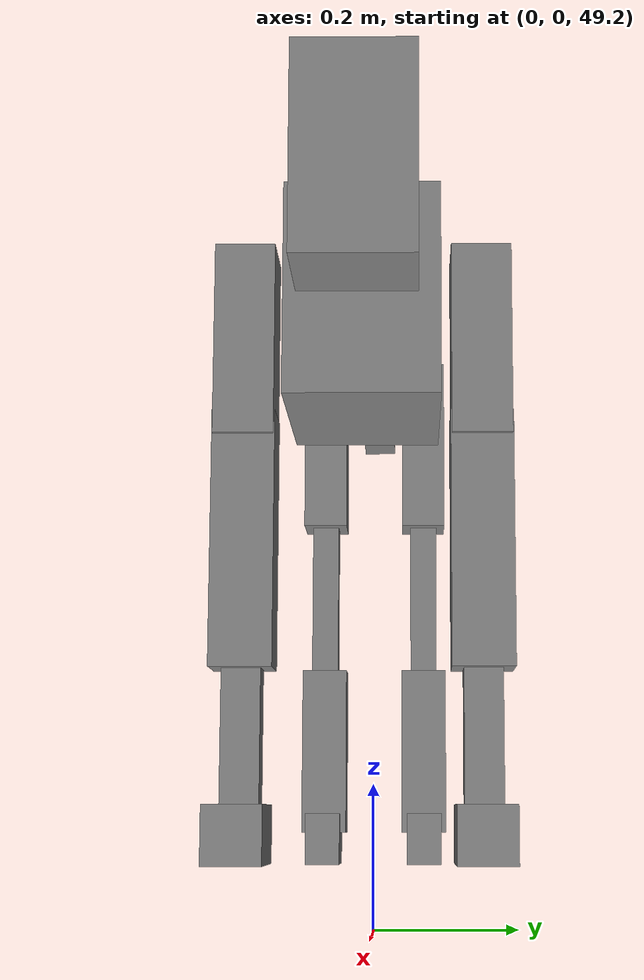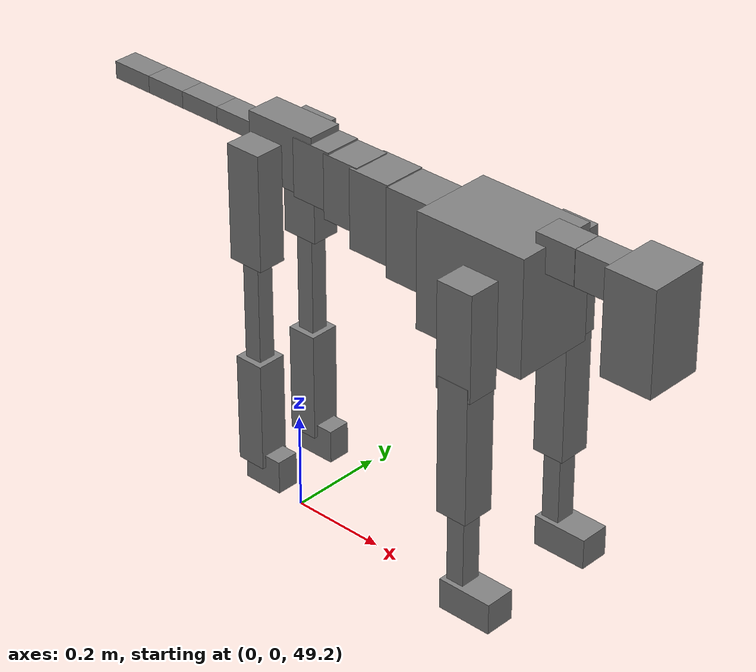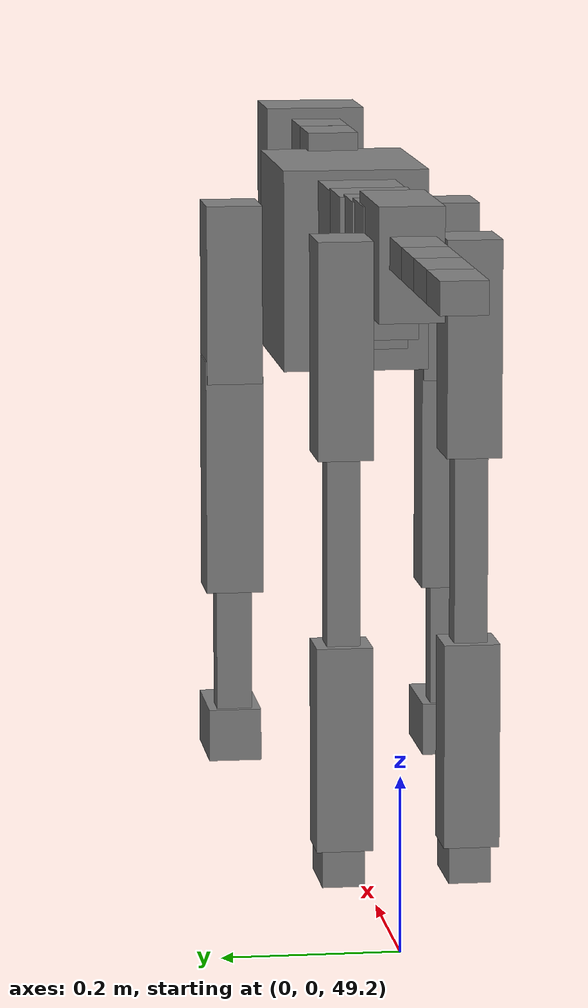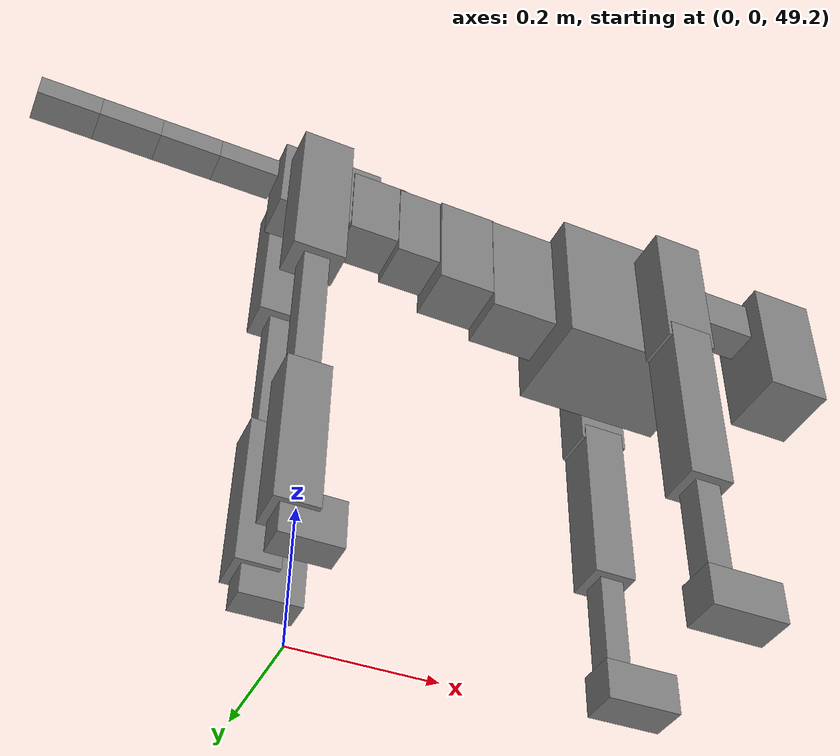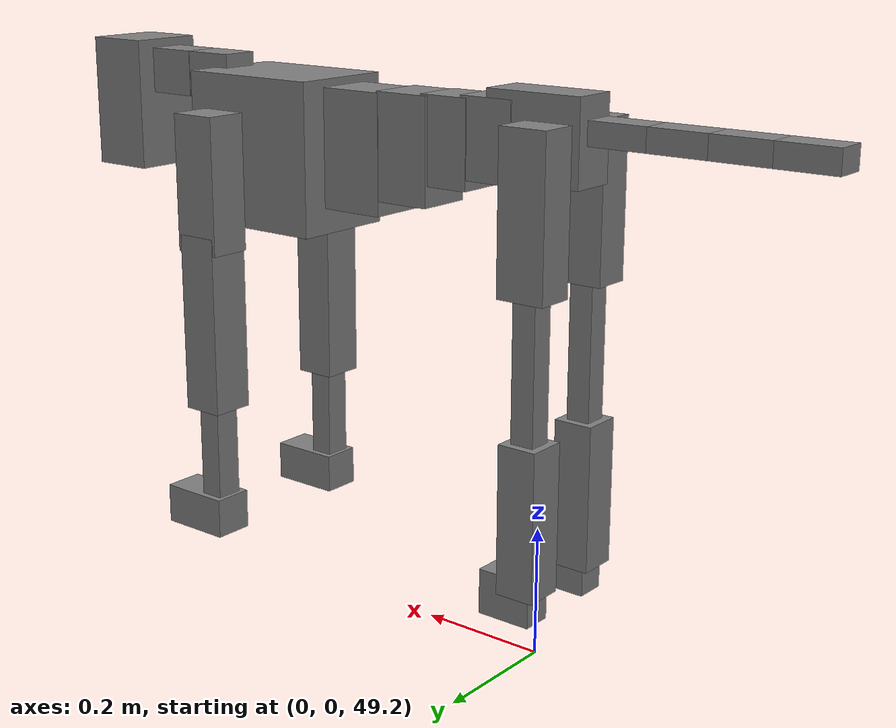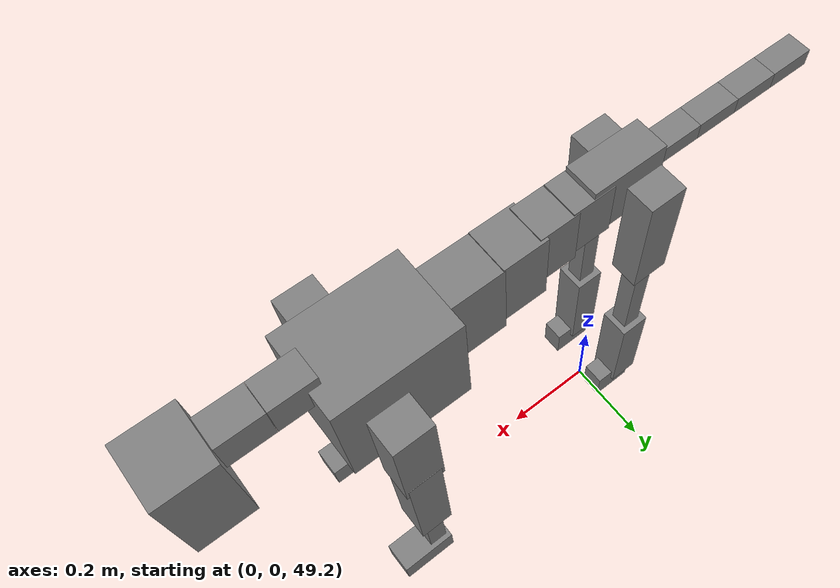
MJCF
<mujoco model="dog">

    <default>
        <joint armature="0.02" stiffness="1" damping="0.2" limited="true"/>
        <geom condim="3" friction="1 0.05 0.05" margin="0.01"/>
        <motor ctrllimited="true" ctrlrange="-1.0 1.0" forcelimited="true" gear="50"/>
    </default>

    <compiler inertiafromgeom="true" angle="radian"/>

    <option timestep="0.016" iterations="50" tolerance="1e-10" solver="Newton" jacobian="dense" cone="pyramidal"/>

    <size nconmax="20000" njmax="60000" nstack="5000000"/>
    <visual>
        <map force="0.1" zfar="30"/>
        <rgba haze="0.15 0.25 0.35 1"/>
        <quality shadowsize="2048"/>
        <global offwidth="800" offheight="800"/>
    </visual>

    <asset>
        <texture type="skybox" builtin="gradient" rgb1="0.3 0.5 0.7" rgb2="0 0 0" width="512" height="512"/>
        <texture name="texplane" type="2d" builtin="checker" rgb1=".2 .3 .4" rgb2=".1 0.15 0.2" width="512" height="512"
                 mark="cross" markrgb=".8 .8 .8"/>
        <texture name="texgeom" type="cube" builtin="flat" mark="cross" width="127" height="1278" rgb1="0.8 0.6 0.4"
                 rgb2="0.8 0.6 0.4" markrgb="1 1 1" random="0.01"/>

        <material name="matplane" reflectance="0.3" texture="texplane" texrepeat="1 1" texuniform="true"/>
        <material name="matgeom" texture="texgeom" texuniform="true" rgba="0.8 0.6 .4 1"/>
    </asset>

    <worldbody>
        <geom name="floor" pos="0 0 0" size="0 0 .25" type="plane" material="matplane" condim="3"/>

        <light directional="false" diffuse=".2 .2 .2" specular="0 0 0" pos="0 0 5" dir="0 0 -1" castshadow="false"/>
        <light mode="targetbodycom" target="torso" directional="false" diffuse=".8 .8 .8" specular="0.3 0.3 0.3"
               pos="0 0 4.0" dir="0 0 -1"/>

        <body name="root" pos="0 0 50">
            <freejoint name="root_1"/>
            <geom type="box" pos="0 0 -0.02" size="0.0774  0.0358  0.063" density="2030"/>

            <body name="spine1" pos="0.054 0 0">
                <joint name="spine1_y" axis="0 1 0" range="0 0.7" limited="true"/>
                <geom type="box" pos="0.02375 0 -0.03" size="0.04375  0.0375  0.05985" density="2030"/>

                <body name="spine2" pos="0.0612 0 0">
                    <joint name="spine2_y" axis="0 1 0" range="-0.15 0.15" limited="true"/>
                    <geom type="box" pos="0.03555  0  -0.04" size="0.04055  0.039  0.06615" density="2030"/>

                    <body name="spine3" pos="0.0730 0 0">
                        <joint name="spine3_y" axis="0 1 0" range="-0.15 0.15" limited="true"/>
                        <geom type="box" pos="0.03555  0  -0.057" size="0.04555  0.0445  0.081" density="2030"/>

                        <body name="spine4" pos="0.0780 0 0">
                            <joint name="spine4_y" axis="0 1 0" range="-0.15 0.15" limited="true"/>
                            <geom type="box" pos="0.05265  0  -0.07" size="0.05265  0.045  0.09135" density="2030"/>

                            <body name="torso" pos="0.1082 0 0">
                                <joint name="torso_y" axis="0 1 0" range="-0.15 0.15" limited="true"/>
                                <geom type="box" pos="0.11925  0  -0.085" size="0.11925  0.085  0.11745"
                                      density="2030"/>

                                <body name="neck1" pos="0.2160  0   0.0180">
                                    <joint name="neck1_y" axis="0 1 0" range="-1.2  -1" limited="true"/>
                                    <geom type="box" pos="0.0423  0  0" size="0.0423  0.03  0.036" density="2325"/>

                                    <body name="neck2" pos="0.0853  0  0">
                                        <joint name="neck2_y" axis="0 1 0" range="0.1  0" limited="true"/>
                                        <geom type="box" pos="0.0423  0  0" size="0.0423  0.03  0.036" density="2325"/>

                                        <body name="head" pos="0.0853  0  0">
                                            <joint name="head_y" axis="0 1 0" range="-0.3  -0.2" limited="true"/>
                                            <geom type="box" pos="0.0531  0  -0.055" size="0.0531  0.06  0.1044"
                                                  density="4030"/>

                                        </body>
                                    </body>
                                </body>

                                <body name="front_shoulder" pos="0.156  0   -0.0480">
                                    <joint name="front_shoulder_y" axis="0 1 0" range="-1 1.5" limited="true"/>
                                    <geom type="box" pos="0 0.13 -0.0798" size="0.0387  0.0331  0.1064" density="1158"/>
                                    <geom type="box" pos="0 -0.13 -0.0798" size="0.0387  0.0331  0.1064"
                                          density="1158"/>

                                    <body name="front_elbow" pos="0  0  -0.1596">
                                        <joint name="front_elbow_y" axis="0 1 0" range="-2 0" limited="true"/>
                                        <geom type="box" pos="0 0.13 -0.1402" size="0.0335  0.0342  0.1402"
                                              density="1081"/>
                                        <geom type="box" pos="0 -0.13 -0.1402" size="0.0335  0.0342  0.1402"
                                              density="1081"/>

                                        <body name="front_wrist" pos="0  0  -0.2803">
                                            <joint name="front_wrist_y" axis="0 1 0" range="-0.2 0" limited="true"/>
                                            <geom type="box" pos="0 0.13 -0.0801" size="0.0190  0.0212  0.0933"
                                                  density="1664"/>
                                            <geom type="box" pos="0 -0.13 -0.0801" size="0.0190  0.0212  0.0933"
                                                  density="1664"/>

                                            <body name="front_finger_end" pos="0  0  -0.1603">
                                                <joint name="front_finger_y" axis="0 1 0" range="-0.4 1"
                                                       limited="true"/>
                                                <geom type="box" pos="0.0314  0.13  -0.0164"
                                                      size="0.0576  0.0314  0.0314" density="1515"/>
                                                <geom type="box" pos="0.0314  -0.13  -0.0164"
                                                      size="0.0576  0.0314  0.0314" density="1515"/>

                                            </body>

                                        </body>
                                    </body>
                                </body>

                            </body>
                        </body>
                    </body>
                </body>
            </body>

            <body name="back_hip" pos="-0.03 0 -0.018">
                <joint name="back_hip_y" axis="0 1 0" range="-1.5 0.3" limited="true"/>
                <geom type="box" pos="0 0.07 -0.0960" size="0.0382  0.0300  0.1188" density="1154"/>
                <geom type="box" pos="0 -0.07 -0.0960" size="0.0382  0.0300  0.1188" density="1154"/>

                <body name="back_knee" pos="0  0  -0.1920">
                    <joint name="back_knee_y" axis="0 1 0" range="0 2.8" limited="true"/>
                    <geom type="box" pos="0 0.07 -0.1207" size="0.0186  0.0183  0.1363" density="1227"/>
                    <geom type="box" pos="0 -0.07 -0.1207" size="0.0186  0.0183  0.1363" density="1227"/>

                    <body name="back_ankle" pos="0  0  -0.2415">
                        <joint name="back_ankle_y" axis="0 1 0" range="-2.2 0" limited="true"/>
                        <geom type="box" pos="0 0.07 -0.1022" size="0.0308  0.0308  0.1135" density="1284"/>
                        <geom type="box" pos="0 -0.07 -0.1022" size="0.0308  0.0308  0.1135" density="1284"/>

                        <body name="back_toe_end" pos="0  0  -0.2044">
                            <joint name="back_toe_y" axis="0 1 0" range="-0.4 1" limited="true"/>
                            <geom type="box" pos="0.0234  0.07  -0.0196" size="0.0429  0.0234  0.0346" density="1515"/>
                            <geom type="box" pos="0.0234  -0.07  -0.0196" size="0.0429  0.0234  0.0346" density="1515"/>

                        </body>
                    </body>
                </body>
            </body>

            <body name="tail1" pos="-0.074 0 -0.006">
                <joint name="tail1_y" axis="0 1 0" range="-0.2 0.2" limited="true"/>
                <geom type="box" pos="-0.0536  0  0" size="0.045  0.025  0.0175" density="1587"/>

                <body name="tail2" pos="-0.09 0 0">
                    <joint name="tail2_y" axis="0 1 0" range="-0.2 0.2" limited="true"/>
                    <geom type="box" pos="-0.0536  0  0" size="0.045  0.025  0.0175" density="1587"/>

                    <body name="tail3" pos="-0.09 0 0">
                        <joint name="tail3_y" axis="0 1 0" range="-0.2 0.2" limited="true"/>
                        <geom type="box" pos="-0.0536  0  0" size="0.045  0.025  0.0175" density="1587"/>

                        <body name="tail4" pos="-0.09 0 0">
                            <joint name="tail4_y" axis="0 1 0" range="-0.2 0.2" limited="true"/>
                            <geom type="box" pos="-0.0536  0  0" size="0.045  0.025  0.0175" density="1587"/>

                        </body>
                    </body>
                </body>
            </body>
        </body>
    </worldbody>

    <actuator>
        <motor joint="spine1_y" forcerange="-150 150     "/>
        <motor joint="spine2_y" forcerange="-150 150     "/>
        <motor joint="spine3_y" forcerange="-150 150     "/>
        <motor joint="spine4_y" forcerange="-150 150     "/>
        <motor joint="torso_y" forcerange="-150 150     "/>
        <motor joint="neck1_y" forcerange="-100 100       "/>
        <motor joint="neck2_y" forcerange="-100 100       "/>
        <motor joint="head_y" forcerange="-150 150       "/>
        <motor joint="front_shoulder_y" forcerange="-183.20 137.16"/>
        <motor joint="front_elbow_y" forcerange="-182.86 166.19"/>
        <motor joint="front_wrist_y" forcerange="-113.26 55.96"/>
        <motor joint="front_finger_y" forcerange="-40.34 87.36"/>
        <motor joint="back_hip_y" forcerange="-376.83 223.00"/>
        <motor joint="back_knee_y" forcerange="-205.58 261.32"/>
        <motor joint="back_angle_y" forcerange="-213.87 179.63"/>
        <motor joint="back_toe_y" forcerange="-79.10 28.22"/>
        <motor joint="tail1_y" forcerange="-50 50     "/>
        <motor joint="tail2_y" forcerange="-50 50     "/>
        <motor joint="tail3_y" forcerange="-50 50     "/>
        <motor joint="tail4_y" forcerange="-50 50     "/>
    </actuator>
</mujoco>
